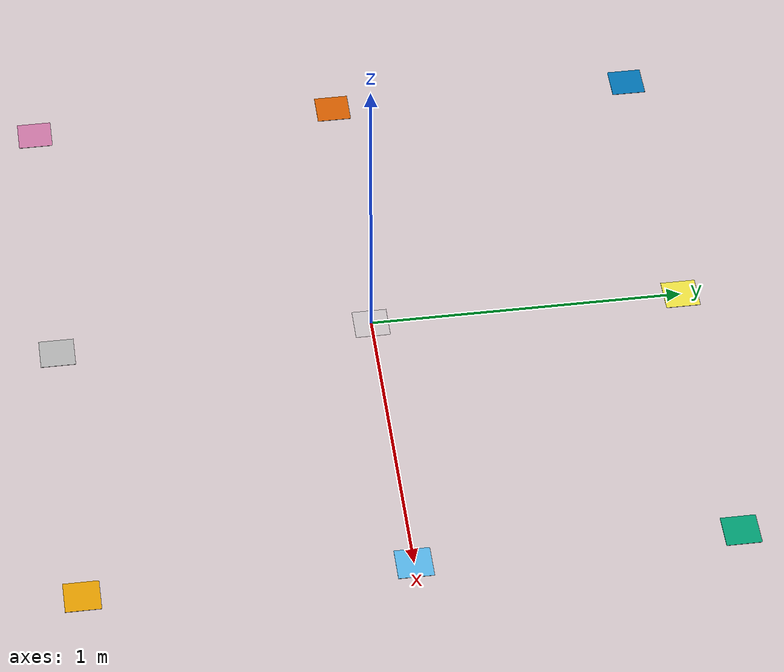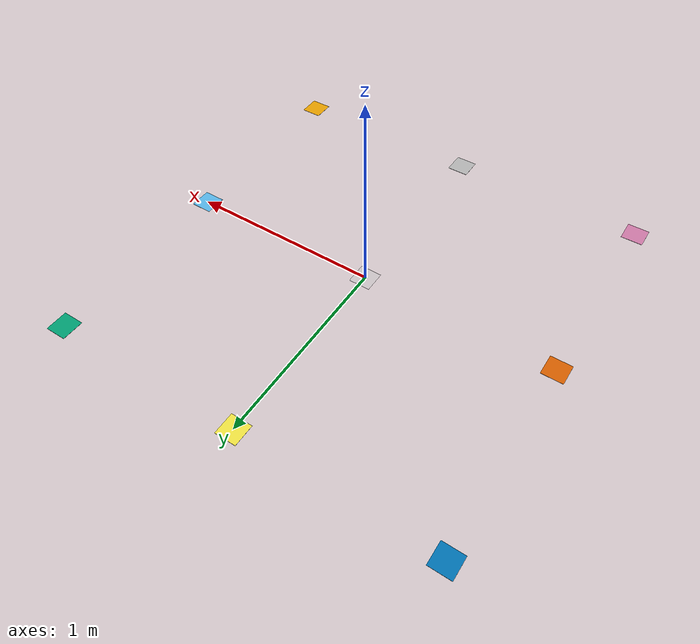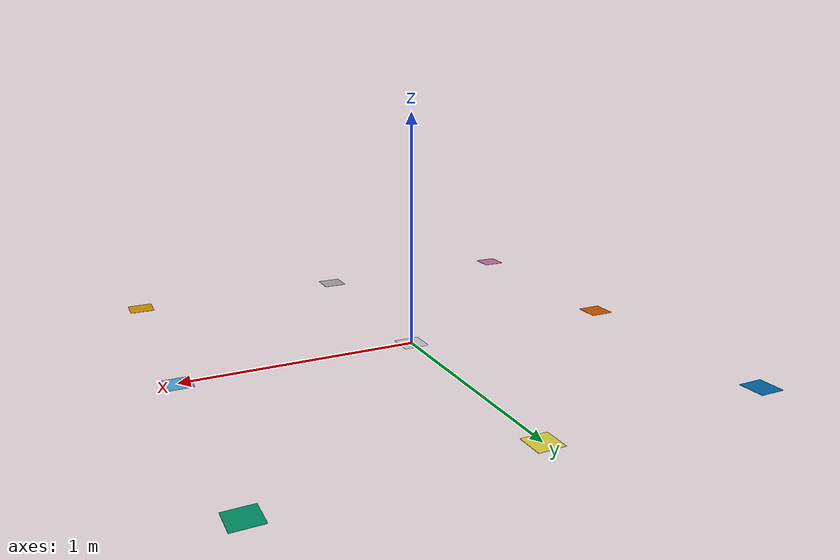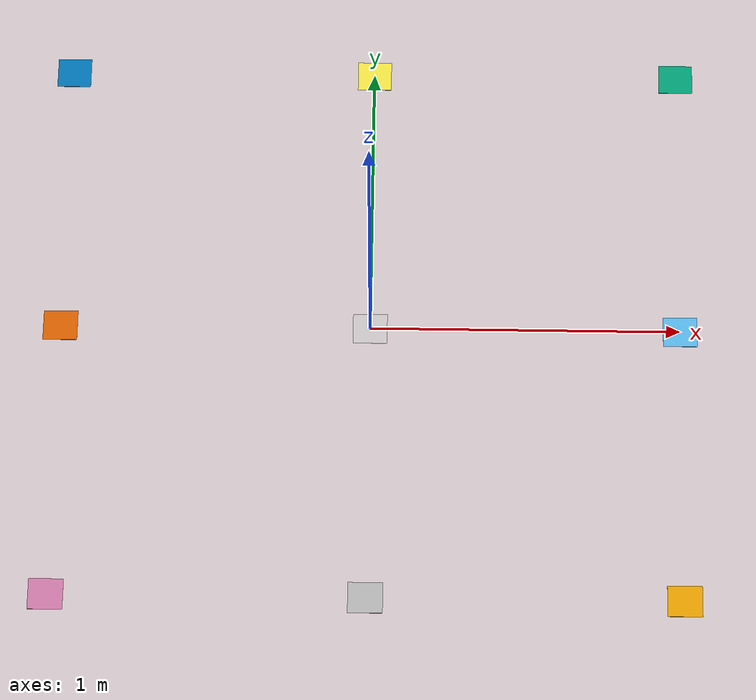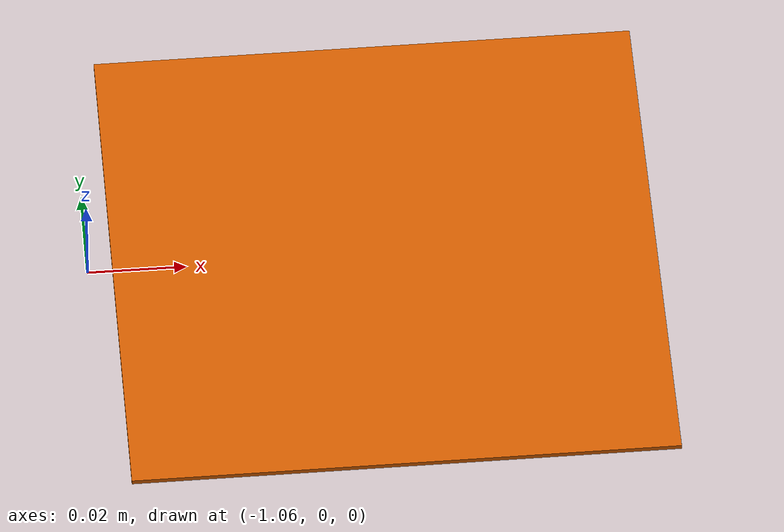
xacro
<?xml version="1.0"?>
<robot xmlns:xacro="http://ros.org/wiki/xacro" name="ground_apriltag">

  <!-- 引入apriltag宏定义 -->
  <xacro:include filename="$(find kuavo_assets)/models/apriltag/urdf/apriltag.xacro"/>

  <!-- 添加一个世界链接作为根链接 -->
  <link name="world"/>

  <!-- 创建地面 AprilTag 基础链接 -->
  <link name="ground_apriltag_base">
    <visual>
      <geometry>
        <box size="0.11 0.11 0.001"/>
      </geometry>
      <material>
        <color rgba="0.8 0.8 0.8 0.5"/>
      </material>
    </visual>
    <collision>
      <geometry>
        <box size="0.11 0.11 0.001"/>
      </geometry>
    </collision>
    <inertial>
      <mass value="0.001"/>
      <inertia ixx="0.000001" ixy="0" ixz="0" iyy="0.000001" iyz="0" izz="0.000001"/>
    </inertial>
  </link>

  <!-- 将地面 AprilTag 基础链接连接到世界坐标系 -->
  <joint name="world_to_ground_apriltag_joint" type="fixed">
    <parent link="world"/>
    <child link="ground_apriltag_base"/>
    <origin xyz="0 0 0" rpy="0 0 0"/>
  </joint>

  <!-- 地面 AprilTag 标记宏 - 创建8个标签 -->
  <xacro:macro name="ground_apriltags" params="parent_link enable_collision:=false">
    <!-- 标签 0: 第一象限 (1, 1) -->
    <xacro:apriltag_marker parent_link="${parent_link}" id="0" enable_collision="${enable_collision}">
      <origin xyz="1.0 1.0 0" rpy="0 0 0"/>
    </xacro:apriltag_marker>

    <!-- 标签 1: 上边 (0, 1) -->
    <xacro:apriltag_marker parent_link="${parent_link}" id="1" enable_collision="${enable_collision}">
      <origin xyz="0.0 1.0 0" rpy="0 0 0"/>
    </xacro:apriltag_marker>

    <!-- 标签 2: 第二象限 (-1, 1) -->
    <xacro:apriltag_marker parent_link="${parent_link}" id="2" enable_collision="${enable_collision}">
      <origin xyz="-1.0 1.0 0" rpy="0 0 0"/>
    </xacro:apriltag_marker>

    <!-- 标签 3: 左边 (-1, 0) -->
    <xacro:apriltag_marker parent_link="${parent_link}" id="3" enable_collision="${enable_collision}">
      <origin xyz="-1.0 0.0 0" rpy="0 0 0"/>
    </xacro:apriltag_marker>

    <!-- 标签 4: 第三象限 (-1, -1) -->
    <xacro:apriltag_marker parent_link="${parent_link}" id="4" enable_collision="${enable_collision}">
      <origin xyz="-1.0 -1.0 0" rpy="0 0 0"/>
    </xacro:apriltag_marker>

    <!-- 标签 5: 下边 (0, -1) -->
    <xacro:apriltag_marker parent_link="${parent_link}" id="5" enable_collision="${enable_collision}">
      <origin xyz="0.0 -1.0 0" rpy="0 0 0"/>
    </xacro:apriltag_marker>

    <!-- 标签 6: 第四象限 (1, -1) -->
    <xacro:apriltag_marker parent_link="${parent_link}" id="6" enable_collision="${enable_collision}">
      <origin xyz="1.0 -1.0 0" rpy="0 0 0"/>
    </xacro:apriltag_marker>

    <!-- 标签 7: 右边 (1, 0) -->
    <xacro:apriltag_marker parent_link="${parent_link}" id="7" enable_collision="${enable_collision}">
      <origin xyz="1.0 0.0 0" rpy="0 0 0"/>
    </xacro:apriltag_marker>
  </xacro:macro>

  <!-- 使用宏创建所有地面 AprilTag -->
  <!-- 默认禁用碰撞以避免与机器人发生接触 -->
  <xacro:ground_apriltags parent_link="ground_apriltag_base" enable_collision="false"/>

</robot>

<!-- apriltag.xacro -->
<robot xmlns:xacro="http://ros.org/wiki/xacro" name="apriltag_marker">

  <xacro:macro name="apriltag_marker" params="parent_link *origin id enable_collision:=false">
    <!-- 定义二维码的Link -->
    <link name="apriltag_marker_${id}">
      <visual>
        <origin xyz="0 0 0" rpy="0 0 0"/>
        <geometry>
          <box size="0.11 0.11 0.001"/>
        </geometry>
      </visual>
      <xacro:if value="${enable_collision}">
        <collision>
          <geometry>
            <box size="0.11 0.11 0.001"/>
          </geometry>
        </collision>
      </xacro:if>
    </link>

    <joint name="apriltag_joint_${id}" type="fixed">
      <xacro:insert_block name="origin" />
      <parent link="${parent_link}"/>
      <child link="apriltag_marker_${id}"/>
    </joint>

    <gazebo reference="apriltag_marker_${id}">
      <visual>
        <material>
          <script>
            <uri>file://$(find kuavo_assets)/models/apriltag/materials/apriltag_${id}.material</uri>
            <name>AprilTag/Marker${id}</name>
          </script>
          <shader type="pixel">
            <normal_map>__default__</normal_map>
          </shader>
          <double_sided>false</double_sided>
        </material>
      </visual>
    </gazebo>
  </xacro:macro>
</robot>
